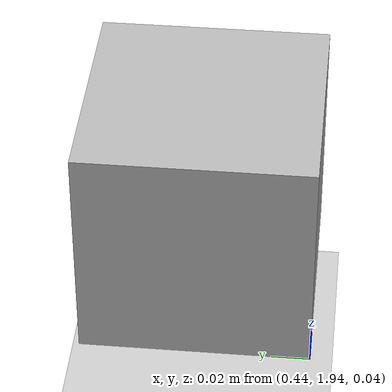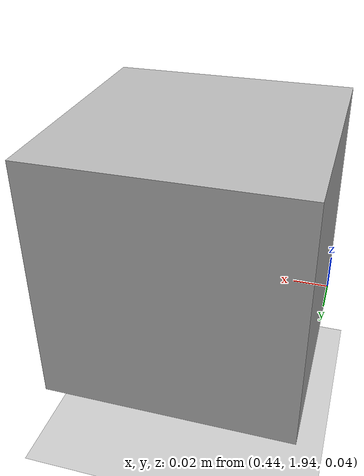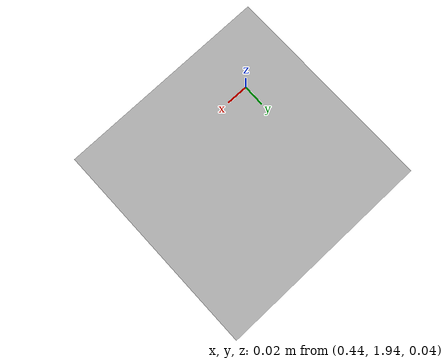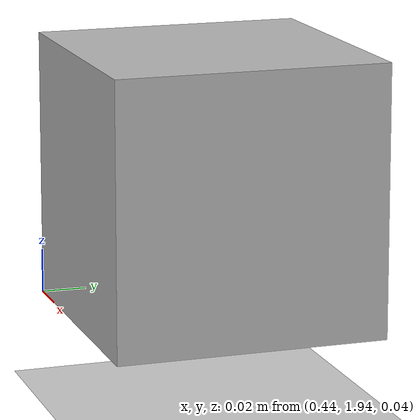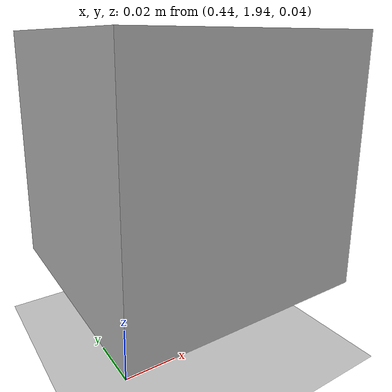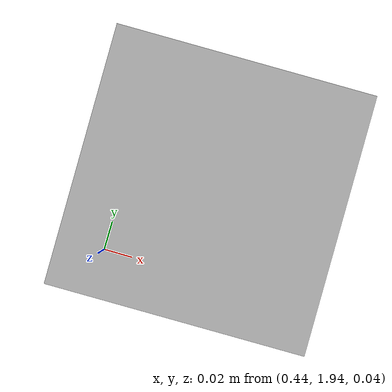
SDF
<sdf version="1.7">
 <world name="default">
  <light name="sun" type="directional">
   <pose>0 0 10 0 -0 0</pose>
   <diffuse>0.8 0.8 0.8 1</diffuse>
   <specular>0.2 0.2 0.2 1</specular>
   <attenuation>
    <range>1000</range>
    <constant>0.9</constant>
    <linear>0.01</linear>
    <quadratic>0.001</quadratic>
   </attenuation>
   <direction>-0.5 0.1 -0.9</direction>
   <spot><inner_angle>0</inner_angle><outer_angle>0</outer_angle><falloff>0</falloff></spot>
  </light>
  <model name="ground_plane">
   <static>1</static>
   <link name="link">
    <collision name="collision">
     <geometry><plane><normal>0 0 1</normal><size>100 100</size></plane></geometry>
     <surface><friction><ode><mu>100</mu><mu2>50</mu2></ode></friction></surface>
    </collision>
    <visual name="visual">
     <cast_shadows>0</cast_shadows>
     <geometry><plane><normal>0 0 1</normal><size>100 100</size></plane></geometry>
     <material>
      <script><uri>file://media/materials/scripts/gazebo.material</uri><name>Gazebo/Grey</name></script>
     </material>
    </visual>
   </link>
  </model>
  <gravity>0 0 -9.8</gravity>
  <magnetic_field>6e-06 2.3e-05 -4.2e-05</magnetic_field>
  <atmosphere type="adiabatic"/>
  <physics type="ode">
   <max_step_size>0.001</max_step_size>
   <real_time_factor>1</real_time_factor>
   <real_time_update_rate>1000</real_time_update_rate>
  </physics>
  <scene><ambient>0.4 0.4 0.4 1</ambient><background>0.7 0.7 0.7 1</background><shadows>1</shadows></scene>
  <spherical_coordinates>
   <surface_model>EARTH_WGS84</surface_model>
   <latitude_deg>0</latitude_deg>
   <longitude_deg>0</longitude_deg>
   <elevation>0</elevation>
   <heading_deg>0</heading_deg>
  </spherical_coordinates>
  <model name="box_0">
   <link name="link">
    <visual name="visual">
     <geometry><mesh><scale>1 1 1</scale><uri>model://box_0/meshes/box_0.dae</uri></mesh></geometry>
    </visual>
    <collision name="collision">
     <geometry><mesh><uri>model://box_0/meshes/box_0.dae</uri></mesh></geometry>
    </collision>
    <inertial>
     <inertia>
      <ixx>0.00000552083</ixx>
      <ixy>0</ixy>
      <ixz>0</ixz>
      <iyy>0.00000552083</iyy>
      <iyz>0</iyz>
      <izz>0.0000106667</izz>
     </inertia>
     <mass>0.01</mass>
    </inertial>
   </link>
   <pose>0.5 2.0 0.099999 -2e-06 -1e-06 3e-06</pose>
  </model>
 </world>
</sdf>
